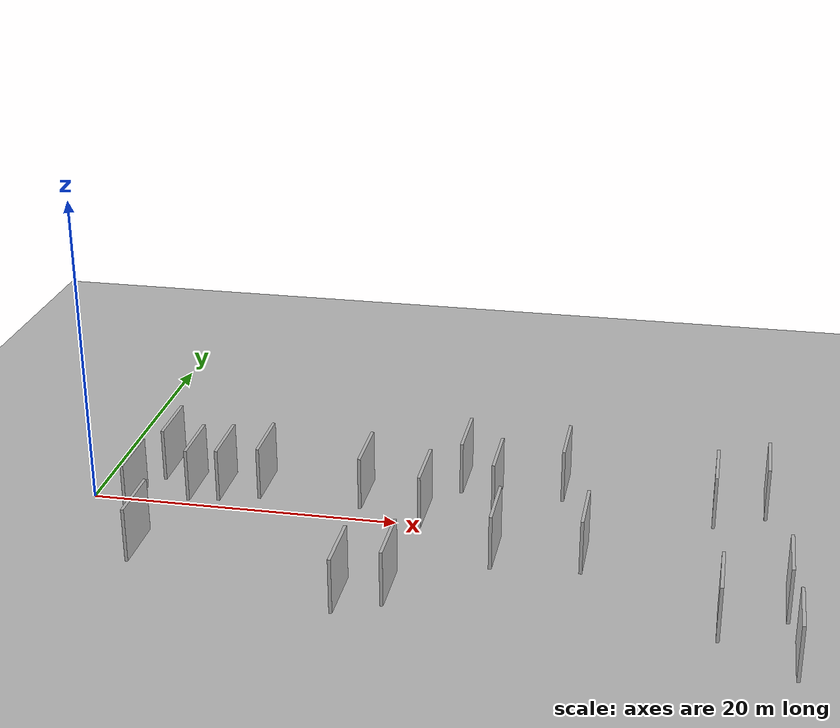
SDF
<?xml version="1.0" encoding="utf-8"?>

<sdf version="1.6">

   <world name="default">

      <gui fullscreen="0">

         <camera name="user_camera">

            <pose>-15 0 4.57585 0 0 0</pose>

            <view_controller>orbit</view_controller>

         </camera>

      </gui>

      <scene>

         <sky>

           <clouds>

             <speed>12</speed>

           </clouds>

         </sky>

         <ambient>0.4 0.4 0.4 1</ambient>

         <background>0.7 0.7 0.7 1</background>

         <shadows>1</shadows>

      </scene>

      <gravity>0 0 -9.8066</gravity>

      <magnetic_field>6e-06 2.3e-05 -4.2e-05</magnetic_field>

      <physics default="0" name="default_physics" type="ode">

         <ode>

            <solver>

               <type>quick</type>

               <iters>10</iters>

               <sor>1.0</sor>

               <use_dynamic_moi_rescaling>0</use_dynamic_moi_rescaling>

            </solver>

            <constraints>

               <cfm>0</cfm>

               <erp>0.2</erp>

               <contact_max_correcting_vel>100</contact_max_correcting_vel>

               <contact_surface_layer>0.001</contact_surface_layer>

            </constraints>

         </ode>

         <max_step_size>0.004</max_step_size>

         <real_time_factor>1</real_time_factor>

         <real_time_update_rate>250</real_time_update_rate>

      </physics>

      <light name="sun" type="directional">

         <cast_shadows>1</cast_shadows>

         <pose>0 0 10 0 0 0</pose>

         <diffuse>0.8 0.8 0.8 1</diffuse>

         <specular>0.2 0.2 0.2 1</specular>

         <attenuation>

            <range>1000</range>

            <constant>0.9</constant>

            <linear>0.01</linear>

            <quadratic>0.001</quadratic>

         </attenuation>

         <direction>-0.5 0.1 -0.9</direction>

      </light>

      <include>

         <name>ground_plane_1</name>

         <uri>model://HANNAS_ground_plane</uri>

         <pose>0 0 0  0 0 0</pose>

      </include>

      <include>

         <name>ground_plane_2</name>

         <uri>model://HANNAS_ground_plane</uri>

         <pose>100 0 0  0 0 0</pose>

      </include>

      <model name="HANNAS_wall_1">

         <static>1</static>

         <pose frame="">23.5020 5.8247 0.0 0.000000 0.000000 1.570796</pose>

         <link name="link">

            <pose frame="">0 0 2.00 0 0 0</pose>

            <collision name="collision">

               <geometry>

                  <box>

                     <size>4.00 0.2 4.00</size>

                  </box>

               </geometry>

               <max_contacts>10</max_contacts>

               <surface>

                  <contact>

                     <ode/>

                  </contact>

                  <bounce/>

                  <friction>

                     <torsional>

                        <ode/>

                     </torsional>

                     <ode/>

                  </friction>

               </surface>

            </collision>

            <visual name="visual">

               <cast_shadows>0</cast_shadows>

               <geometry>

                  <box>

                     <size>4.00 0.2 4.00</size>

                  </box>

               </geometry>

               <material>

                  <script>

                     <uri>model://HANNAS_wall/materials/scripts</uri>

                     <uri>model://HANNAS_wall/materials/textures</uri>

                     <name>vrc/HANNAS_wall</name>

                  </script>

               </material>

            </visual>

            <self_collide>0</self_collide>

            <enable_wind>0</enable_wind>

            <kinematic>0</kinematic>

         </link>

      </model>

      <model name="HANNAS_wall_2">

         <static>1</static>

         <pose frame="">25.9427 3.2425 0.0 0.000000 0.000000 1.570796</pose>

         <link name="link">

            <pose frame="">0 0 2.00 0 0 0</pose>

            <collision name="collision">

               <geometry>

                  <box>

                     <size>4.00 0.2 4.00</size>

                  </box>

               </geometry>

               <max_contacts>10</max_contacts>

               <surface>

                  <contact>

                     <ode/>

                  </contact>

                  <bounce/>

                  <friction>

                     <torsional>

                        <ode/>

                     </torsional>

                     <ode/>

                  </friction>

               </surface>

            </collision>

            <visual name="visual">

               <cast_shadows>0</cast_shadows>

               <geometry>

                  <box>

                     <size>4.00 0.2 4.00</size>

                  </box>

               </geometry>

               <material>

                  <script>

                     <uri>model://HANNAS_wall/materials/scripts</uri>

                     <uri>model://HANNAS_wall/materials/textures</uri>

                     <name>vrc/HANNAS_wall</name>

                  </script>

               </material>

            </visual>

            <self_collide>0</self_collide>

            <enable_wind>0</enable_wind>

            <kinematic>0</kinematic>

         </link>

      </model>

      <model name="HANNAS_wall_3">

         <static>1</static>

         <pose frame="">44.1683 -6.1671 0.0 0.000000 0.000000 1.570796</pose>

         <link name="link">

            <pose frame="">0 0 2.00 0 0 0</pose>

            <collision name="collision">

               <geometry>

                  <box>

                     <size>4.00 0.2 4.00</size>

                  </box>

               </geometry>

               <max_contacts>10</max_contacts>

               <surface>

                  <contact>

                     <ode/>

                  </contact>

                  <bounce/>

                  <friction>

                     <torsional>

                        <ode/>

                     </torsional>

                     <ode/>

                  </friction>

               </surface>

            </collision>

            <visual name="visual">

               <cast_shadows>0</cast_shadows>

               <geometry>

                  <box>

                     <size>4.00 0.2 4.00</size>

                  </box>

               </geometry>

               <material>

                  <script>

                     <uri>model://HANNAS_wall/materials/scripts</uri>

                     <uri>model://HANNAS_wall/materials/textures</uri>

                     <name>vrc/HANNAS_wall</name>

                  </script>

               </material>

            </visual>

            <self_collide>0</self_collide>

            <enable_wind>0</enable_wind>

            <kinematic>0</kinematic>

         </link>

      </model>

      <model name="HANNAS_wall_4">

         <static>1</static>

         <pose frame="">30.0401 5.9075 0.0 0.000000 0.000000 1.570796</pose>

         <link name="link">

            <pose frame="">0 0 2.00 0 0 0</pose>

            <collision name="collision">

               <geometry>

                  <box>

                     <size>4.00 0.2 4.00</size>

                  </box>

               </geometry>

               <max_contacts>10</max_contacts>

               <surface>

                  <contact>

                     <ode/>

                  </contact>

                  <bounce/>

                  <friction>

                     <torsional>

                        <ode/>

                     </torsional>

                     <ode/>

                  </friction>

               </surface>

            </collision>

            <visual name="visual">

               <cast_shadows>0</cast_shadows>

               <geometry>

                  <box>

                     <size>4.00 0.2 4.00</size>

                  </box>

               </geometry>

               <material>

                  <script>

                     <uri>model://HANNAS_wall/materials/scripts</uri>

                     <uri>model://HANNAS_wall/materials/textures</uri>

                     <name>vrc/HANNAS_wall</name>

                  </script>

               </material>

            </visual>

            <self_collide>0</self_collide>

            <enable_wind>0</enable_wind>

            <kinematic>0</kinematic>

         </link>

      </model>

      <model name="HANNAS_wall_5">

         <static>1</static>

         <pose frame="">39.6587 4.1006 0.0 0.000000 0.000000 1.570796</pose>

         <link name="link">

            <pose frame="">0 0 2.00 0 0 0</pose>

            <collision name="collision">

               <geometry>

                  <box>

                     <size>4.00 0.2 4.00</size>

                  </box>

               </geometry>

               <max_contacts>10</max_contacts>

               <surface>

                  <contact>

                     <ode/>

                  </contact>

                  <bounce/>

                  <friction>

                     <torsional>

                        <ode/>

                     </torsional>

                     <ode/>

                  </friction>

               </surface>

            </collision>

            <visual name="visual">

               <cast_shadows>0</cast_shadows>

               <geometry>

                  <box>

                     <size>4.00 0.2 4.00</size>

                  </box>

               </geometry>

               <material>

                  <script>

                     <uri>model://HANNAS_wall/materials/scripts</uri>

                     <uri>model://HANNAS_wall/materials/textures</uri>

                     <name>vrc/HANNAS_wall</name>

                  </script>

               </material>

            </visual>

            <self_collide>0</self_collide>

            <enable_wind>0</enable_wind>

            <kinematic>0</kinematic>

         </link>

      </model>

      <model name="HANNAS_wall_6">

         <static>1</static>

         <pose frame="">44.6574 -11.9312 0.0 0.000000 0.000000 1.570796</pose>

         <link name="link">

            <pose frame="">0 0 2.00 0 0 0</pose>

            <collision name="collision">

               <geometry>

                  <box>

                     <size>4.00 0.2 4.00</size>

                  </box>

               </geometry>

               <max_contacts>10</max_contacts>

               <surface>

                  <contact>

                     <ode/>

                  </contact>

                  <bounce/>

                  <friction>

                     <torsional>

                        <ode/>

                     </torsional>

                     <ode/>

                  </friction>

               </surface>

            </collision>

            <visual name="visual">

               <cast_shadows>0</cast_shadows>

               <geometry>

                  <box>

                     <size>4.00 0.2 4.00</size>

                  </box>

               </geometry>

               <material>

                  <script>

                     <uri>model://HANNAS_wall/materials/scripts</uri>

                     <uri>model://HANNAS_wall/materials/textures</uri>

                     <name>vrc/HANNAS_wall</name>

                  </script>

               </material>

            </visual>

            <self_collide>0</self_collide>

            <enable_wind>0</enable_wind>

            <kinematic>0</kinematic>

         </link>

      </model>

      <model name="HANNAS_wall_7">

         <static>1</static>

         <pose frame="">6.4385 1.6249 0.0 0.000000 0.000000 1.570796</pose>

         <link name="link">

            <pose frame="">0 0 2.00 0 0 0</pose>

            <collision name="collision">

               <geometry>

                  <box>

                     <size>4.00 0.2 4.00</size>

                  </box>

               </geometry>

               <max_contacts>10</max_contacts>

               <surface>

                  <contact>

                     <ode/>

                  </contact>

                  <bounce/>

                  <friction>

                     <torsional>

                        <ode/>

                     </torsional>

                     <ode/>

                  </friction>

               </surface>

            </collision>

            <visual name="visual">

               <cast_shadows>0</cast_shadows>

               <geometry>

                  <box>

                     <size>4.00 0.2 4.00</size>

                  </box>

               </geometry>

               <material>

                  <script>

                     <uri>model://HANNAS_wall/materials/scripts</uri>

                     <uri>model://HANNAS_wall/materials/textures</uri>

                     <name>vrc/HANNAS_wall</name>

                  </script>

               </material>

            </visual>

            <self_collide>0</self_collide>

            <enable_wind>0</enable_wind>

            <kinematic>0</kinematic>

         </link>

      </model>

      <model name="HANNAS_wall_8">

         <static>1</static>

         <pose frame="">17.5084 2.5680 0.0 0.000000 0.000000 1.570796</pose>

         <link name="link">

            <pose frame="">0 0 2.00 0 0 0</pose>

            <collision name="collision">

               <geometry>

                  <box>

                     <size>4.00 0.2 4.00</size>

                  </box>

               </geometry>

               <max_contacts>10</max_contacts>

               <surface>

                  <contact>

                     <ode/>

                  </contact>

                  <bounce/>

                  <friction>

                     <torsional>

                        <ode/>

                     </torsional>

                     <ode/>

                  </friction>

               </surface>

            </collision>

            <visual name="visual">

               <cast_shadows>0</cast_shadows>

               <geometry>

                  <box>

                     <size>4.00 0.2 4.00</size>

                  </box>

               </geometry>

               <material>

                  <script>

                     <uri>model://HANNAS_wall/materials/scripts</uri>

                     <uri>model://HANNAS_wall/materials/textures</uri>

                     <name>vrc/HANNAS_wall</name>

                  </script>

               </material>

            </visual>

            <self_collide>0</self_collide>

            <enable_wind>0</enable_wind>

            <kinematic>0</kinematic>

         </link>

      </model>

      <model name="HANNAS_wall_9">

         <static>1</static>

         <pose frame="">8.3507 1.9587 0.0 0.000000 0.000000 1.570796</pose>

         <link name="link">

            <pose frame="">0 0 2.00 0 0 0</pose>

            <collision name="collision">

               <geometry>

                  <box>

                     <size>4.00 0.2 4.00</size>

                  </box>

               </geometry>

               <max_contacts>10</max_contacts>

               <surface>

                  <contact>

                     <ode/>

                  </contact>

                  <bounce/>

                  <friction>

                     <torsional>

                        <ode/>

                     </torsional>

                     <ode/>

                  </friction>

               </surface>

            </collision>

            <visual name="visual">

               <cast_shadows>0</cast_shadows>

               <geometry>

                  <box>

                     <size>4.00 0.2 4.00</size>

                  </box>

               </geometry>

               <material>

                  <script>

                     <uri>model://HANNAS_wall/materials/scripts</uri>

                     <uri>model://HANNAS_wall/materials/textures</uri>

                     <name>vrc/HANNAS_wall</name>

                  </script>

               </material>

            </visual>

            <self_collide>0</self_collide>

            <enable_wind>0</enable_wind>

            <kinematic>0</kinematic>

         </link>

      </model>

      <model name="HANNAS_wall_10">

         <static>1</static>

         <pose frame="">40.3242 -8.8632 0.0 0.000000 0.000000 1.570796</pose>

         <link name="link">

            <pose frame="">0 0 2.00 0 0 0</pose>

            <collision name="collision">

               <geometry>

                  <box>

                     <size>4.00 0.2 4.00</size>

                  </box>

               </geometry>

               <max_contacts>10</max_contacts>

               <surface>

                  <contact>

                     <ode/>

                  </contact>

                  <bounce/>

                  <friction>

                     <torsional>

                        <ode/>

                     </torsional>

                     <ode/>

                  </friction>

               </surface>

            </collision>

            <visual name="visual">

               <cast_shadows>0</cast_shadows>

               <geometry>

                  <box>

                     <size>4.00 0.2 4.00</size>

                  </box>

               </geometry>

               <material>

                  <script>

                     <uri>model://HANNAS_wall/materials/scripts</uri>

                     <uri>model://HANNAS_wall/materials/textures</uri>

                     <name>vrc/HANNAS_wall</name>

                  </script>

               </material>

            </visual>

            <self_collide>0</self_collide>

            <enable_wind>0</enable_wind>

            <kinematic>0</kinematic>

         </link>

      </model>

      <model name="HANNAS_wall_11">

         <static>1</static>

         <pose frame="">18.6393 -9.8626 0.0 0.000000 0.000000 1.570796</pose>

         <link name="link">

            <pose frame="">0 0 2.00 0 0 0</pose>

            <collision name="collision">

               <geometry>

                  <box>

                     <size>4.00 0.2 4.00</size>

                  </box>

               </geometry>

               <max_contacts>10</max_contacts>

               <surface>

                  <contact>

                     <ode/>

                  </contact>

                  <bounce/>

                  <friction>

                     <torsional>

                        <ode/>

                     </torsional>

                     <ode/>

                  </friction>

               </surface>

            </collision>

            <visual name="visual">

               <cast_shadows>0</cast_shadows>

               <geometry>

                  <box>

                     <size>4.00 0.2 4.00</size>

                  </box>

               </geometry>

               <material>

                  <script>

                     <uri>model://HANNAS_wall/materials/scripts</uri>

                     <uri>model://HANNAS_wall/materials/textures</uri>

                     <name>vrc/HANNAS_wall</name>

                  </script>

               </material>

            </visual>

            <self_collide>0</self_collide>

            <enable_wind>0</enable_wind>

            <kinematic>0</kinematic>

         </link>

      </model>

      <model name="HANNAS_wall_12">

         <static>1</static>

         <pose frame="">10.8577 2.7048 0.0 0.000000 0.000000 1.570796</pose>

         <link name="link">

            <pose frame="">0 0 2.00 0 0 0</pose>

            <collision name="collision">

               <geometry>

                  <box>

                     <size>4.00 0.2 4.00</size>

                  </box>

               </geometry>

               <max_contacts>10</max_contacts>

               <surface>

                  <contact>

                     <ode/>

                  </contact>

                  <bounce/>

                  <friction>

                     <torsional>

                        <ode/>

                     </torsional>

                     <ode/>

                  </friction>

               </surface>

            </collision>

            <visual name="visual">

               <cast_shadows>0</cast_shadows>

               <geometry>

                  <box>

                     <size>4.00 0.2 4.00</size>

                  </box>

               </geometry>

               <material>

                  <script>

                     <uri>model://HANNAS_wall/materials/scripts</uri>

                     <uri>model://HANNAS_wall/materials/textures</uri>

                     <name>vrc/HANNAS_wall</name>

                  </script>

               </material>

            </visual>

            <self_collide>0</self_collide>

            <enable_wind>0</enable_wind>

            <kinematic>0</kinematic>

         </link>

      </model>

      <model name="HANNAS_wall_13">

         <static>1</static>

         <pose frame="">42.8439 5.7170 0.0 0.000000 0.000000 1.570796</pose>

         <link name="link">

            <pose frame="">0 0 2.00 0 0 0</pose>

            <collision name="collision">

               <geometry>

                  <box>

                     <size>4.00 0.2 4.00</size>

                  </box>

               </geometry>

               <max_contacts>10</max_contacts>

               <surface>

                  <contact>

                     <ode/>

                  </contact>

                  <bounce/>

                  <friction>

                     <torsional>

                        <ode/>

                     </torsional>

                     <ode/>

                  </friction>

               </surface>

            </collision>

            <visual name="visual">

               <cast_shadows>0</cast_shadows>

               <geometry>

                  <box>

                     <size>4.00 0.2 4.00</size>

                  </box>

               </geometry>

               <material>

                  <script>

                     <uri>model://HANNAS_wall/materials/scripts</uri>

                     <uri>model://HANNAS_wall/materials/textures</uri>

                     <name>vrc/HANNAS_wall</name>

                  </script>

               </material>

            </visual>

            <self_collide>0</self_collide>

            <enable_wind>0</enable_wind>

            <kinematic>0</kinematic>

         </link>

      </model>

      <model name="HANNAS_wall_14">

         <static>1</static>

         <pose frame="">3.2256 -1.1168 0.0 0.000000 0.000000 1.570796</pose>

         <link name="link">

            <pose frame="">0 0 2.00 0 0 0</pose>

            <collision name="collision">

               <geometry>

                  <box>

                     <size>4.00 0.2 4.00</size>

                  </box>

               </geometry>

               <max_contacts>10</max_contacts>

               <surface>

                  <contact>

                     <ode/>

                  </contact>

                  <bounce/>

                  <friction>

                     <torsional>

                        <ode/>

                     </torsional>

                     <ode/>

                  </friction>

               </surface>

            </collision>

            <visual name="visual">

               <cast_shadows>0</cast_shadows>

               <geometry>

                  <box>

                     <size>4.00 0.2 4.00</size>

                  </box>

               </geometry>

               <material>

                  <script>

                     <uri>model://HANNAS_wall/materials/scripts</uri>

                     <uri>model://HANNAS_wall/materials/textures</uri>

                     <name>vrc/HANNAS_wall</name>

                  </script>

               </material>

            </visual>

            <self_collide>0</self_collide>

            <enable_wind>0</enable_wind>

            <kinematic>0</kinematic>

         </link>

      </model>

      <model name="HANNAS_wall_15">

         <static>1</static>

         <pose frame="">26.7758 -3.3444 0.0 0.000000 0.000000 1.570796</pose>

         <link name="link">

            <pose frame="">0 0 2.00 0 0 0</pose>

            <collision name="collision">

               <geometry>

                  <box>

                     <size>4.00 0.2 4.00</size>

                  </box>

               </geometry>

               <max_contacts>10</max_contacts>

               <surface>

                  <contact>

                     <ode/>

                  </contact>

                  <bounce/>

                  <friction>

                     <torsional>

                        <ode/>

                     </torsional>

                     <ode/>

                  </friction>

               </surface>

            </collision>

            <visual name="visual">

               <cast_shadows>0</cast_shadows>

               <geometry>

                  <box>

                     <size>4.00 0.2 4.00</size>

                  </box>

               </geometry>

               <material>

                  <script>

                     <uri>model://HANNAS_wall/materials/scripts</uri>

                     <uri>model://HANNAS_wall/materials/textures</uri>

                     <name>vrc/HANNAS_wall</name>

                  </script>

               </material>

            </visual>

            <self_collide>0</self_collide>

            <enable_wind>0</enable_wind>

            <kinematic>0</kinematic>

         </link>

      </model>

      <model name="HANNAS_wall_16">

         <static>1</static>

         <pose frame="">4.0781 4.1308 0.0 0.000000 0.000000 1.570796</pose>

         <link name="link">

            <pose frame="">0 0 2.00 0 0 0</pose>

            <collision name="collision">

               <geometry>

                  <box>

                     <size>4.00 0.2 4.00</size>

                  </box>

               </geometry>

               <max_contacts>10</max_contacts>

               <surface>

                  <contact>

                     <ode/>

                  </contact>

                  <bounce/>

                  <friction>

                     <torsional>

                        <ode/>

                     </torsional>

                     <ode/>

                  </friction>

               </surface>

            </collision>

            <visual name="visual">

               <cast_shadows>0</cast_shadows>

               <geometry>

                  <box>

                     <size>4.00 0.2 4.00</size>

                  </box>

               </geometry>

               <material>

                  <script>

                     <uri>model://HANNAS_wall/materials/scripts</uri>

                     <uri>model://HANNAS_wall/materials/textures</uri>

                     <name>vrc/HANNAS_wall</name>

                  </script>

               </material>

            </visual>

            <self_collide>0</self_collide>

            <enable_wind>0</enable_wind>

            <kinematic>0</kinematic>

         </link>

      </model>

      <model name="HANNAS_wall_17">

         <static>1</static>

         <pose frame="">32.1266 -2.9166 0.0 0.000000 0.000000 1.570796</pose>

         <link name="link">

            <pose frame="">0 0 2.00 0 0 0</pose>

            <collision name="collision">

               <geometry>

                  <box>

                     <size>4.00 0.2 4.00</size>

                  </box>

               </geometry>

               <max_contacts>10</max_contacts>

               <surface>

                  <contact>

                     <ode/>

                  </contact>

                  <bounce/>

                  <friction>

                     <torsional>

                        <ode/>

                     </torsional>

                     <ode/>

                  </friction>

               </surface>

            </collision>

            <visual name="visual">

               <cast_shadows>0</cast_shadows>

               <geometry>

                  <box>

                     <size>4.00 0.2 4.00</size>

                  </box>

               </geometry>

               <material>

                  <script>

                     <uri>model://HANNAS_wall/materials/scripts</uri>

                     <uri>model://HANNAS_wall/materials/textures</uri>

                     <name>vrc/HANNAS_wall</name>

                  </script>

               </material>

            </visual>

            <self_collide>0</self_collide>

            <enable_wind>0</enable_wind>

            <kinematic>0</kinematic>

         </link>

      </model>

      <model name="HANNAS_wall_18">

         <static>1</static>

         <pose frame="">21.6810 0.7908 0.0 0.000000 0.000000 1.570796</pose>

         <link name="link">

            <pose frame="">0 0 2.00 0 0 0</pose>

            <collision name="collision">

               <geometry>

                  <box>

                     <size>4.00 0.2 4.00</size>

                  </box>

               </geometry>

               <max_contacts>10</max_contacts>

               <surface>

                  <contact>

                     <ode/>

                  </contact>

                  <bounce/>

                  <friction>

                     <torsional>

                        <ode/>

                     </torsional>

                     <ode/>

                  </friction>

               </surface>

            </collision>

            <visual name="visual">

               <cast_shadows>0</cast_shadows>

               <geometry>

                  <box>

                     <size>4.00 0.2 4.00</size>

                  </box>

               </geometry>

               <material>

                  <script>

                     <uri>model://HANNAS_wall/materials/scripts</uri>

                     <uri>model://HANNAS_wall/materials/textures</uri>

                     <name>vrc/HANNAS_wall</name>

                  </script>

               </material>

            </visual>

            <self_collide>0</self_collide>

            <enable_wind>0</enable_wind>

            <kinematic>0</kinematic>

         </link>

      </model>

      <model name="HANNAS_wall_19">

         <static>1</static>

         <pose frame="">5.2329 -6.4461 0.0 0.000000 0.000000 1.570796</pose>

         <link name="link">

            <pose frame="">0 0 2.00 0 0 0</pose>

            <collision name="collision">

               <geometry>

                  <box>

                     <size>4.00 0.2 4.00</size>

                  </box>

               </geometry>

               <max_contacts>10</max_contacts>

               <surface>

                  <contact>

                     <ode/>

                  </contact>

                  <bounce/>

                  <friction>

                     <torsional>

                        <ode/>

                     </torsional>

                     <ode/>

                  </friction>

               </surface>

            </collision>

            <visual name="visual">

               <cast_shadows>0</cast_shadows>

               <geometry>

                  <box>

                     <size>4.00 0.2 4.00</size>

                  </box>

               </geometry>

               <material>

                  <script>

                     <uri>model://HANNAS_wall/materials/scripts</uri>

                     <uri>model://HANNAS_wall/materials/textures</uri>

                     <name>vrc/HANNAS_wall</name>

                  </script>

               </material>

            </visual>

            <self_collide>0</self_collide>

            <enable_wind>0</enable_wind>

            <kinematic>0</kinematic>

         </link>

      </model>

      <model name="HANNAS_wall_20">

         <static>1</static>

         <pose frame="">21.3211 -8.5732 0.0 0.000000 0.000000 1.570796</pose>

         <link name="link">

            <pose frame="">0 0 2.00 0 0 0</pose>

            <collision name="collision">

               <geometry>

                  <box>

                     <size>4.00 0.2 4.00</size>

                  </box>

               </geometry>

               <max_contacts>10</max_contacts>

               <surface>

                  <contact>

                     <ode/>

                  </contact>

                  <bounce/>

                  <friction>

                     <torsional>

                        <ode/>

                     </torsional>

                     <ode/>

                  </friction>

               </surface>

            </collision>

            <visual name="visual">

               <cast_shadows>0</cast_shadows>

               <geometry>

                  <box>

                     <size>4.00 0.2 4.00</size>

                  </box>

               </geometry>

               <material>

                  <script>

                     <uri>model://HANNAS_wall/materials/scripts</uri>

                     <uri>model://HANNAS_wall/materials/textures</uri>

                     <name>vrc/HANNAS_wall</name>

                  </script>

               </material>

            </visual>

            <self_collide>0</self_collide>

            <enable_wind>0</enable_wind>

            <kinematic>0</kinematic>

         </link>

      </model>

   </world>

</sdf>

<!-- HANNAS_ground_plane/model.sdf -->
<sdf version="1.4">
<model name="HANNAS_ground_plane">
  <static>true</static>
    <link name="link">
      <collision name="collision">
        <geometry>
          <plane>
            <normal>0 0 1</normal>
            <size>1000 1000</size>
          </plane>
        </geometry>
        <surface>
          <friction>
            <ode>
              <mu>100</mu>
              <mu2>50</mu2>
            </ode>
          </friction>
        </surface>
      </collision>
      <visual name="visual">
        <cast_shadows>false</cast_shadows>
        <geometry>
          <plane>
            <normal>0 0 1</normal>
            <size>1000 1000</size>
          </plane>
        </geometry>
        <material>
          <script>
            <uri>model://HANNAS_ground_plane/materials/scripts/HANNAS_ground_plane.material</uri>
	    <uri>model://HANNAS_ground_plane/materials/textures</uri>
            <name>HANNASGroundPlane/Image</name>
          </script>
        </material>
      </visual>
    </link>
  </model>
</sdf>
